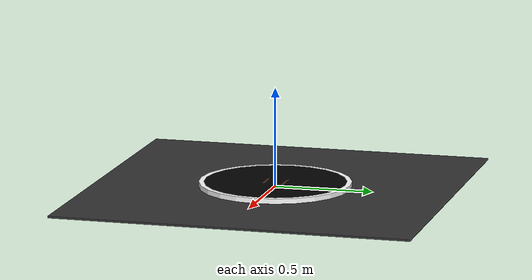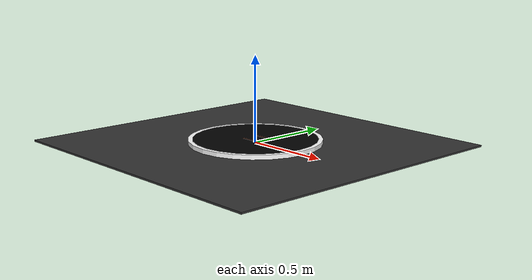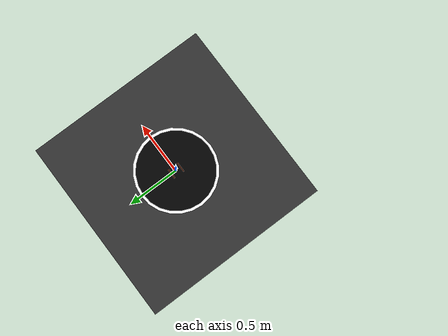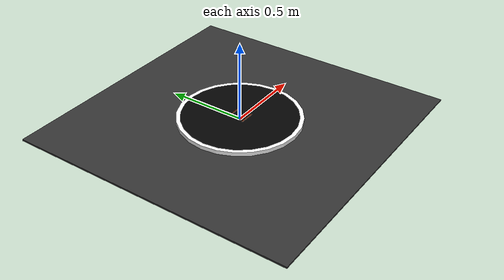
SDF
<?xml version="1.0" ?>

<sdf version="1.10">

    <world name="pista">

        <!-- PLUGINS DO GAZEBO                                -->

        <plugin
            filename="gz-sim-physics-system"
            name="gz::sim::systems::Physics">
        </plugin>

        <plugin
            filename="gz-sim-user-commands-system"
            name="gz::sim::systems::UserCommands">
        </plugin>

        <plugin
            filename="gz-sim-scene-broadcaster-system"
            name="gz::sim::systems::SceneBroadcaster">
        </plugin>

        <!-- Manter apenas UM plugin de sensores -->
        <plugin
            filename="gz-sim-sensors-system"
            name="gz::sim::systems::Sensors">

            <render_engine>ogre2</render_engine>

        </plugin>

        <!-- FÍSICA                                           -->

        <physics name="physics" type="ignored">

            <max_step_size>0.001</max_step_size>

            <real_time_factor>1.0</real_time_factor>

        </physics>

        <gravity>0 0 -9.81</gravity>

        <!-- ILUMINAÇÃO                                       -->

        <light type="directional" name="sun">

            <cast_shadows>true</cast_shadows>

            <pose>
                0 0 10 0 0 0
            </pose>

            <diffuse>
                0.9 0.9 0.9 1
            </diffuse>

            <specular>
                0.2 0.2 0.2 1
            </specular>

            <direction>
                -0.5 0.1 -0.9
            </direction>

        </light>

        <!-- ÁREA EXTERNA / YOCHI                             -->
        <!--
            Mini Sumô:
            Yochi = 1.80 m x 1.80 m

            A superfície superior fica em z = 0.
        -->

        <model name="yochi">

            <static>true</static>

            <pose>
                0 0 -0.005 0 0 0
            </pose>

            <link name="yochi_link">

                <collision name="yochi_collision">

                    <geometry>

                        <box>
                            <size>
                                1.80 1.80 0.01
                            </size>
                        </box>

                    </geometry>

                </collision>

                <visual name="yochi_visual">

                    <geometry>

                        <box>
                            <size>
                                1.80 1.80 0.01
                            </size>
                        </box>

                    </geometry>

                    <material>

                        <ambient>
                            0.20 0.20 0.20 1
                        </ambient>

                        <diffuse>
                            0.20 0.20 0.20 1
                        </diffuse>

                        <specular>
                            0.05 0.05 0.05 1
                        </specular>

                    </material>

                </visual>

            </link>

        </model>

        <!-- DOHYO MINI SUMÔ 500 g                            -->

        <model name="dohyo">

            <static>true</static>

            <pose>
                0 0 0 0 0 0
            </pose>

            <link name="dohyo_link">

                <!-- COLISÃO REAL DO DOHYO                    -->

                <collision name="dohyo_collision">

                    <pose>
                        0 0 0.0125 0 0 0
                    </pose>

                    <geometry>

                        <cylinder>

                            <radius>
                                0.385
                            </radius>

                            <length>
                                0.025
                            </length>

                        </cylinder>

                    </geometry>

                    <surface>

                        <friction>

                            <ode>

                                <mu>1.0</mu>

                                <mu2>1.0</mu2>

                            </ode>

                        </friction>

                    </surface>

                </collision>

                <!-- DISCO BRANCO                             -->
                <!--
                    O disco branco inteiro serve de base
                    visual para formar a Tawara.
                -->

                <visual name="disco_branco">

                    <pose>
                        0 0 0.0125 0 0 0
                    </pose>

                    <geometry>

                        <cylinder>

                            <radius>
                                0.385
                            </radius>

                            <length>
                                0.025
                            </length>

                        </cylinder>

                    </geometry>

                    <material>

                        <ambient>
                            1 1 1 1
                        </ambient>

                        <diffuse>
                            1 1 1 1
                        </diffuse>

                        <specular>
                            0.15 0.15 0.15 1
                        </specular>

                    </material>

                </visual>

                <!-- SUPERFÍCIE PRETA                         -->
                <!--
                    Raio externo: 385 mm
                    Tawara:       25 mm

                    Raio preto:
                    385 - 25 = 360 mm
                -->

                <visual name="superficie_preta">

                    <pose>
                        0 0 0.0251 0 0 0
                    </pose>

                    <geometry>

                        <cylinder>

                            <radius>
                                0.360
                            </radius>

                            <length>
                                0.0002
                            </length>

                        </cylinder>

                    </geometry>

                    <material>

                        <ambient>
                            0.01 0.01 0.01 1
                        </ambient>

                        <diffuse>
                            0.01 0.01 0.01 1
                        </diffuse>

                        <specular>
                            0.05 0.05 0.05 1
                        </specular>

                    </material>

                </visual>

                <!-- SHIKIRI-SEN DO CARRO 1                   -->
                <!--
                    100 mm comprimento
                    10 mm largura

                    Estamos usando o eixo Y para os robôs
                    ficarem frente a frente.
                -->

                <visual name="shikiri_carro1">

                    <pose>
                        0 0.05 0.0254 0 0 0
                    </pose>

                    <geometry>

                        <box>

                            <size>
                                0.10 0.01 0.0004
                            </size>

                        </box>

                    </geometry>

                    <material>

                        <!-- Marrom -->
                        <ambient>
                            0.35 0.12 0.03 1
                        </ambient>

                        <diffuse>
                            0.35 0.12 0.03 1
                        </diffuse>

                    </material>

                </visual>

                <!-- SHIKIRI-SEN DO CARRO 2                   -->

                <visual name="shikiri_carro2">

                    <pose>
                        0 -0.05 0.0254 0 0 0
                    </pose>

                    <geometry>

                        <box>

                            <size>
                                0.10 0.01 0.0004
                            </size>

                        </box>

                    </geometry>

                    <material>

                        <ambient>
                            0.35 0.12 0.03 1
                        </ambient>

                        <diffuse>
                            0.35 0.12 0.03 1
                        </diffuse>

                    </material>

                </visual>

            </link>

        </model>

    </world>

</sdf>
